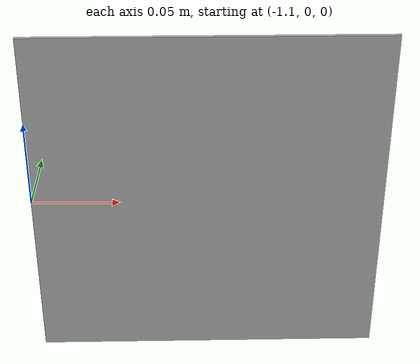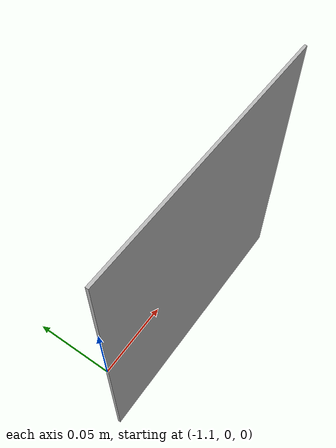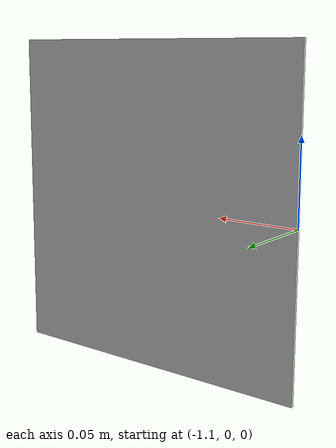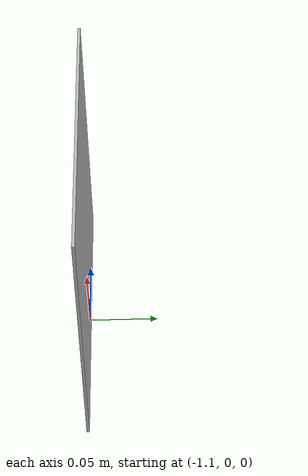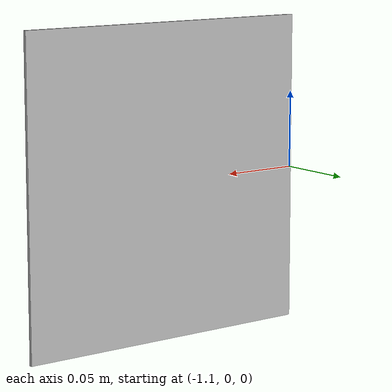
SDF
<?xml version="1.0" ?>
<sdf version="1.6">
  <model name="1.5blasting_agent">
    <static>true</static>
    <pose>-1 0 0 1.5708 0 0</pose>
    <link name="link">
      <collision name="collision">
        <geometry>
          <mesh>
            <scale>1 1 1</scale>
            <uri>model://1.5blasting_agent/1.5blastingagent_1.dae</uri>
          </mesh>
        </geometry>
        <surface>
          <friction>
            <ode>
              <mu>1.2</mu>
              <mu2>1.2</mu2>
            </ode>
          </friction>
        </surface>
      </collision>
      <visual name="visual">
        <geometry>
          <mesh>
            <scale>1 1 1</scale>
            <uri>model://1.5blasting_agent/1.5blastingagent_1.dae</uri>
          </mesh>
        </geometry>
      </visual>
    </link>
  </model>
</sdf>
